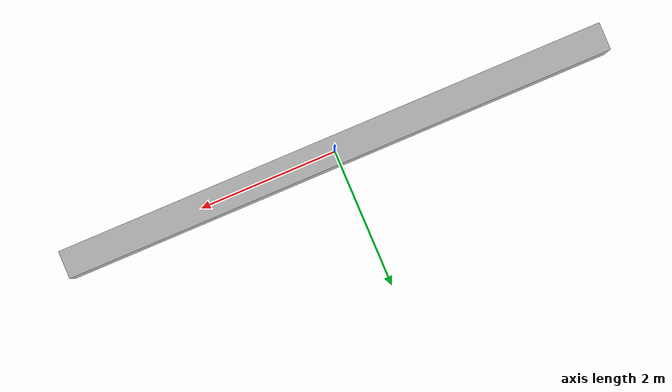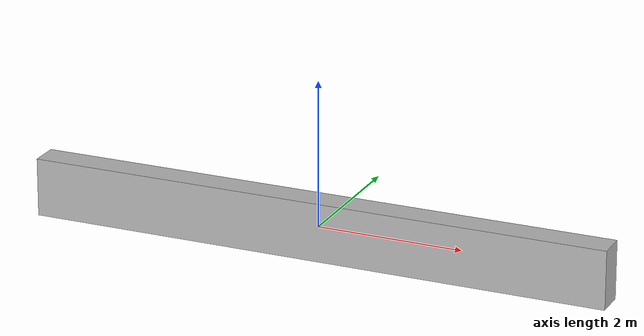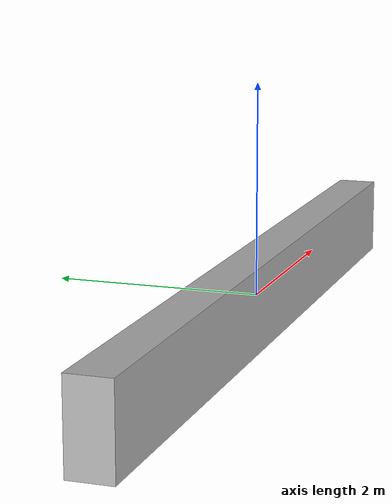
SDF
<?xml version="1.0" ?>
<sdf version="1.5">
  <model name="smaze_wall">
    <static>true</static>
    <link name="link">
      <pose>0 0 0 0 0 0</pose>
      <collision name="collision">
        <geometry>
          <box>
            <size>8 0.4 0.8</size>
          </box>
        </geometry>
      </collision>
      <visual name="visual">
        <geometry>
          <box>
            <size>8 0.4 0.8</size>
          </box>
        </geometry>
        <material>
          <script>
            <uri>model://smaze_wall/materials/scripts</uri>
            <uri>model://smaze_wall/materials/textures</uri>
            <name>vrc/smaze_wall</name>
          </script>
        </material>
      </visual>
    </link>
  </model>
</sdf>
